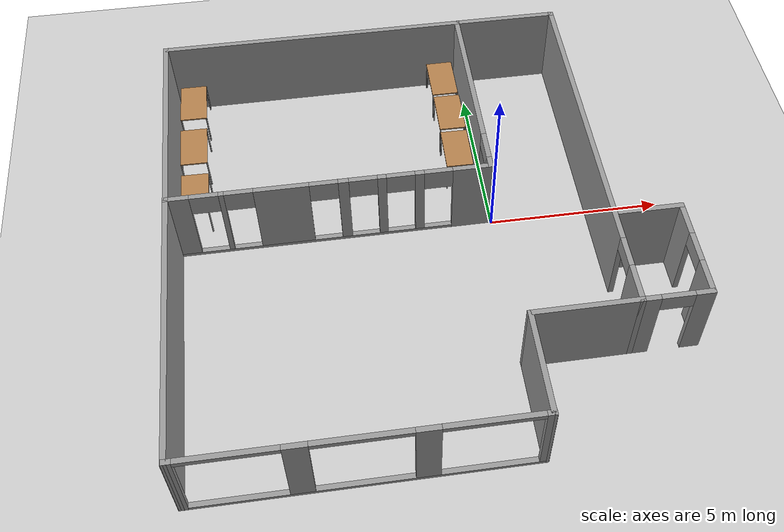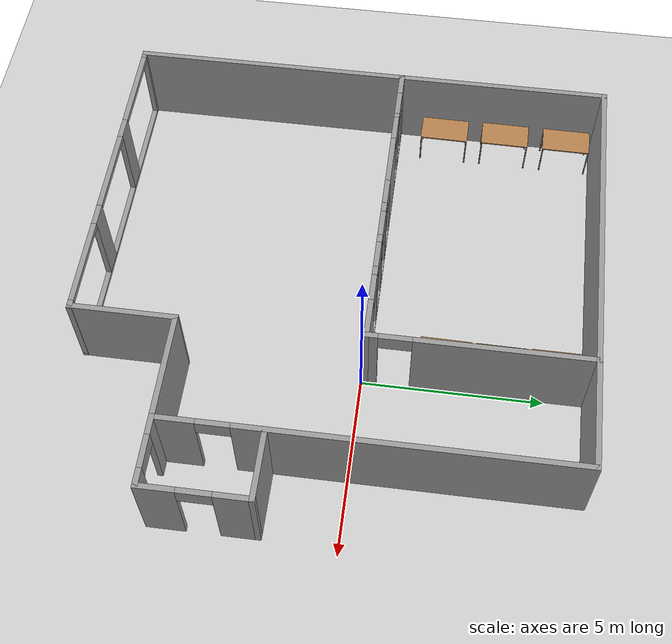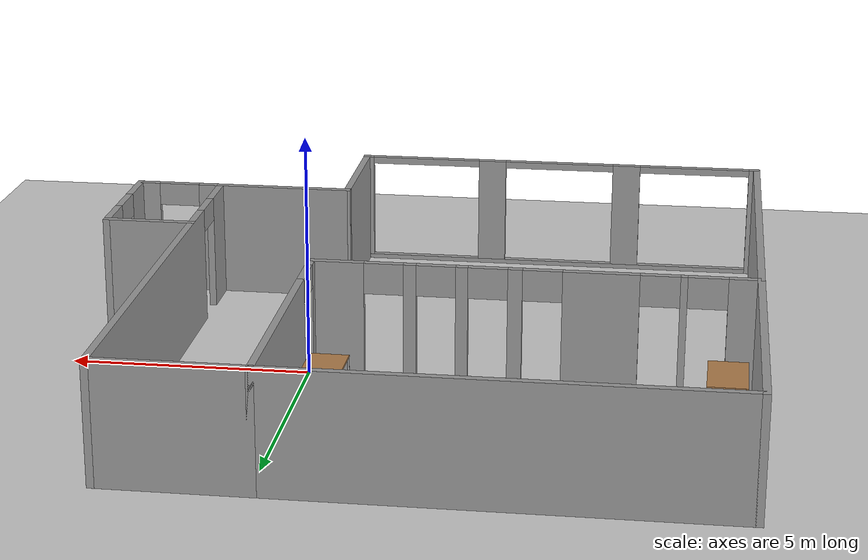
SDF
<sdf version="1.6">
 <world name="default">
  <light name="sun" type="directional">
   <pose>0 0 10 0 -0 0</pose>
   <diffuse>0.8 0.8 0.8 1</diffuse>
   <specular>0.1 0.1 0.1 1</specular>
   <attenuation>
    <range>1000</range>
    <constant>0.9</constant>
    <linear>0.01</linear>
    <quadratic>0.001</quadratic>
   </attenuation>
   <direction>-0.5 0.5 -1</direction>
  </light>
  <model name="ground_plane">
   <static>1</static>
   <link name="link">
    <collision name="collision">
     <geometry><plane><normal>0 0 1</normal><size>100 100</size></plane></geometry>
     <surface><friction><ode><mu>100</mu><mu2>50</mu2></ode></friction></surface>
    </collision>
    <visual name="visual">
     <cast_shadows>0</cast_shadows>
     <geometry><plane><normal>0 0 1</normal><size>100 100</size></plane></geometry>
     <material>
      <script><uri>file://media/materials/scripts/gazebo.material</uri><name>Gazebo/Grey</name></script>
     </material>
    </visual>
   </link>
  </model>
  <gravity>0 0 -9.8</gravity>
  <magnetic_field>6e-06 2.3e-05 -4.2e-05</magnetic_field>
  <atmosphere type="adiabatic"/>
  <physics name="default_physics" default="0" type="ode">
   <max_step_size>0.001</max_step_size>
   <real_time_factor>1</real_time_factor>
   <real_time_update_rate>1000</real_time_update_rate>
  </physics>
  <scene><ambient>0.4 0.4 0.4 1</ambient><background>0.7 0.7 0.7 1</background><shadows>1</shadows></scene>
  <spherical_coordinates>
   <surface_model>EARTH_WGS84</surface_model>
   <latitude_deg>0</latitude_deg>
   <longitude_deg>0</longitude_deg>
   <elevation>0</elevation>
   <heading_deg>0</heading_deg>
  </spherical_coordinates>
  <model name="world_model">
   <pose>-2.18469 -0.812866 0 0 -0 0</pose>
   <link name="Wall_10">
    <pose>-2.42056 0.916417 0 0 -0 3.14159</pose>
    <visual name="Wall_10_Visual_0">
     <pose>-3.99833 0 1.25 0 -0 0</pose>
     <geometry><box><size>1.15334 0.15 2.5</size></box></geometry>
     <material>
      <script><uri>file://media/materials/scripts/gazebo.material</uri><name>Gazebo/Grey</name></script>
      <ambient>1 1 1 1</ambient>
     </material>
    </visual>
    <collision name="Wall_10_Collision_0">
     <geometry><box><size>1.15334 0.15 2.5</size></box></geometry>
     <pose>-3.99833 0 1.25 0 -0 0</pose>
    </collision>
    <visual name="Wall_10_Visual_1">
     <pose>0.576669 0 0.05 0 -0 0</pose>
     <geometry><box><size>7.99666 0.15 0.1</size></box></geometry>
     <material>
      <script><uri>file://media/materials/scripts/gazebo.material</uri><name>Gazebo/Grey</name></script>
      <ambient>1 1 1 1</ambient>
     </material>
    </visual>
    <collision name="Wall_10_Collision_1">
     <geometry><box><size>7.99666 0.15 0.1</size></box></geometry>
     <pose>0.576669 0 0.05 0 -0 0</pose>
    </collision>
    <visual name="Wall_10_Visual_2">
     <pose>-2.48936 0 1.3 0 -0 0</pose>
     <geometry><box><size>0.264613 0.15 2.4</size></box></geometry>
     <material>
      <script><uri>file://media/materials/scripts/gazebo.material</uri><name>Gazebo/Grey</name></script>
      <ambient>1 1 1 1</ambient>
     </material>
    </visual>
    <collision name="Wall_10_Collision_2">
     <geometry><box><size>0.264613 0.15 2.4</size></box></geometry>
     <pose>-2.48936 0 1.3 0 -0 0</pose>
    </collision>
    <visual name="Wall_10_Visual_3">
     <pose>-1.43235 0 1.3 0 -0 0</pose>
     <geometry><box><size>0.249404 0.15 2.4</size></box></geometry>
     <material>
      <script><uri>file://media/materials/scripts/gazebo.material</uri><name>Gazebo/Grey</name></script>
      <ambient>1 1 1 1</ambient>
     </material>
    </visual>
    <collision name="Wall_10_Collision_3">
     <geometry><box><size>0.249404 0.15 2.4</size></box></geometry>
     <pose>-1.43235 0 1.3 0 -0 0</pose>
    </collision>
    <visual name="Wall_10_Visual_4">
     <pose>-0.36013 0 1.3 0 -0 0</pose>
     <geometry><box><size>0.29503 0.15 2.4</size></box></geometry>
     <material>
      <script><uri>file://media/materials/scripts/gazebo.material</uri><name>Gazebo/Grey</name></script>
      <ambient>1 1 1 1</ambient>
     </material>
    </visual>
    <collision name="Wall_10_Collision_4">
     <geometry><box><size>0.29503 0.15 2.4</size></box></geometry>
     <pose>-0.36013 0 1.3 0 -0 0</pose>
    </collision>
    <visual name="Wall_10_Visual_5">
     <pose>1.35538 0 1.3 0 -0 0</pose>
     <geometry><box><size>1.53599 0.15 2.4</size></box></geometry>
     <material>
      <script><uri>file://media/materials/scripts/gazebo.material</uri><name>Gazebo/Grey</name></script>
      <ambient>1 1 1 1</ambient>
     </material>
    </visual>
    <collision name="Wall_10_Collision_5">
     <geometry><box><size>1.53599 0.15 2.4</size></box></geometry>
     <pose>1.35538 0 1.3 0 -0 0</pose>
    </collision>
    <visual name="Wall_10_Visual_6">
     <pose>2.99453 0 1.3 0 -0 0</pose>
     <geometry><box><size>0.142316 0.15 2.4</size></box></geometry>
     <material>
      <script><uri>file://media/materials/scripts/gazebo.material</uri><name>Gazebo/Grey</name></script>
      <ambient>1 1 1 1</ambient>
     </material>
    </visual>
    <collision name="Wall_10_Collision_6">
     <geometry><box><size>0.142316 0.15 2.4</size></box></geometry>
     <pose>2.99453 0 1.3 0 -0 0</pose>
    </collision>
    <visual name="Wall_10_Visual_7">
     <pose>4.22035 0 1.3 0 -0 0</pose>
     <geometry><box><size>0.709308 0.15 2.4</size></box></geometry>
     <material>
      <script><uri>file://media/materials/scripts/gazebo.material</uri><name>Gazebo/Grey</name></script>
      <ambient>1 1 1 1</ambient>
     </material>
    </visual>
    <collision name="Wall_10_Collision_7">
     <geometry><box><size>0.709308 0.15 2.4</size></box></geometry>
     <pose>4.22035 0 1.3 0 -0 0</pose>
    </collision>
    <visual name="Wall_10_Visual_8">
     <pose>-3.02166 0 2.175 0 -0 0</pose>
     <geometry><box><size>0.8 0.15 0.65</size></box></geometry>
     <material>
      <script><uri>file://media/materials/scripts/gazebo.material</uri><name>Gazebo/Grey</name></script>
      <ambient>1 1 1 1</ambient>
     </material>
    </visual>
    <collision name="Wall_10_Collision_8">
     <geometry><box><size>0.8 0.15 0.65</size></box></geometry>
     <pose>-3.02166 0 2.175 0 -0 0</pose>
    </collision>
    <visual name="Wall_10_Visual_9">
     <pose>-1.95705 0 2.175 0 -0 0</pose>
     <geometry><box><size>0.8 0.15 0.65</size></box></geometry>
     <material>
      <script><uri>file://media/materials/scripts/gazebo.material</uri><name>Gazebo/Grey</name></script>
      <ambient>1 1 1 1</ambient>
     </material>
    </visual>
    <collision name="Wall_10_Collision_9">
     <geometry><box><size>0.8 0.15 0.65</size></box></geometry>
     <pose>-1.95705 0 2.175 0 -0 0</pose>
    </collision>
    <visual name="Wall_10_Visual_10">
     <pose>-0.907645 0 2.175 0 -0 0</pose>
     <geometry><box><size>0.8 0.15 0.65</size></box></geometry>
     <material>
      <script><uri>file://media/materials/scripts/gazebo.material</uri><name>Gazebo/Grey</name></script>
      <ambient>1 1 1 1</ambient>
     </material>
    </visual>
    <collision name="Wall_10_Collision_10">
     <geometry><box><size>0.8 0.15 0.65</size></box></geometry>
     <pose>-0.907645 0 2.175 0 -0 0</pose>
    </collision>
    <visual name="Wall_10_Visual_11">
     <pose>0.187385 0 2.175 0 -0 0</pose>
     <geometry><box><size>0.8 0.15 0.65</size></box></geometry>
     <material>
      <script><uri>file://media/materials/scripts/gazebo.material</uri><name>Gazebo/Grey</name></script>
      <ambient>1 1 1 1</ambient>
     </material>
    </visual>
    <collision name="Wall_10_Collision_11">
     <geometry><box><size>0.8 0.15 0.65</size></box></geometry>
     <pose>0.187385 0 2.175 0 -0 0</pose>
    </collision>
    <visual name="Wall_10_Visual_12">
     <pose>2.52338 0 2.175 0 -0 0</pose>
     <geometry><box><size>0.8 0.15 0.65</size></box></geometry>
     <material>
      <script><uri>file://media/materials/scripts/gazebo.material</uri><name>Gazebo/Grey</name></script>
      <ambient>1 1 1 1</ambient>
     </material>
    </visual>
    <collision name="Wall_10_Collision_12">
     <geometry><box><size>0.8 0.15 0.65</size></box></geometry>
     <pose>2.52338 0 2.175 0 -0 0</pose>
    </collision>
    <visual name="Wall_10_Visual_13">
     <pose>3.46569 0 2.175 0 -0 0</pose>
     <geometry><box><size>0.8 0.15 0.65</size></box></geometry>
     <material>
      <script><uri>file://media/materials/scripts/gazebo.material</uri><name>Gazebo/Grey</name></script>
      <ambient>1 1 1 1</ambient>
     </material>
    </visual>
    <collision name="Wall_10_Collision_13">
     <geometry><box><size>0.8 0.15 0.65</size></box></geometry>
     <pose>3.46569 0 2.175 0 -0 0</pose>
    </collision>
   </link>
   <link name="Wall_12">
    <collision name="Wall_12_Collision">
     <geometry><box><size>6.15 0.15 2.5</size></box></geometry>
     <pose>0 0 1.25 0 -0 0</pose>
    </collision>
    <visual name="Wall_12_Visual">
     <pose>0 0 1.25 0 -0 0</pose>
     <geometry><box><size>6.15 0.15 2.5</size></box></geometry>
     <material>
      <script><uri>file://media/materials/scripts/gazebo.material</uri><name>Gazebo/Grey</name></script>
      <ambient>1 1 1 1</ambient>
     </material>
    </visual>
    <pose>-6.92056 3.91642 0 0 -0 1.5708</pose>
   </link>
   <link name="Wall_14">
    <collision name="Wall_14_Collision">
     <geometry><box><size>9.15 0.15 2.5</size></box></geometry>
     <pose>0 0 1.25 0 -0 0</pose>
    </collision>
    <visual name="Wall_14_Visual">
     <pose>0 0 1.25 0 -0 0</pose>
     <geometry><box><size>9.15 0.15 2.5</size></box></geometry>
     <material>
      <script><uri>file://media/materials/scripts/gazebo.material</uri><name>Gazebo/Grey</name></script>
      <ambient>1 1 1 1</ambient>
     </material>
    </visual>
    <pose>-2.42056 6.91642 0 0 -0 0</pose>
   </link>
   <link name="Wall_16">
    <pose>2.07944 3.91642 0 0 0 -1.5708</pose>
    <visual name="Wall_16_Visual_0">
     <pose>-0.640307 0 1.25 0 -0 0</pose>
     <geometry><box><size>4.86939 0.15 2.5</size></box></geometry>
     <material>
      <script><uri>file://media/materials/scripts/gazebo.material</uri><name>Gazebo/Grey</name></script>
      <ambient>1 1 1 1</ambient>
     </material>
    </visual>
    <collision name="Wall_16_Collision_0">
     <geometry><box><size>4.86939 0.15 2.5</size></box></geometry>
     <pose>-0.640307 0 1.25 0 -0 0</pose>
    </collision>
    <visual name="Wall_16_Visual_1">
     <pose>2.88469 0 1.25 0 -0 0</pose>
     <geometry><box><size>0.380615 0.15 2.5</size></box></geometry>
     <material>
      <script><uri>file://media/materials/scripts/gazebo.material</uri><name>Gazebo/Grey</name></script>
      <ambient>1 1 1 1</ambient>
     </material>
    </visual>
    <collision name="Wall_16_Collision_1">
     <geometry><box><size>0.380615 0.15 2.5</size></box></geometry>
     <pose>2.88469 0 1.25 0 -0 0</pose>
    </collision>
    <visual name="Wall_16_Visual_2">
     <pose>2.24438 0 2.25 0 -0 0</pose>
     <geometry><box><size>0.9 0.15 0.5</size></box></geometry>
     <material>
      <script><uri>file://media/materials/scripts/gazebo.material</uri><name>Gazebo/Grey</name></script>
      <ambient>1 1 1 1</ambient>
     </material>
    </visual>
    <collision name="Wall_16_Collision_2">
     <geometry><box><size>0.9 0.15 0.5</size></box></geometry>
     <pose>2.24438 0 2.25 0 -0 0</pose>
    </collision>
   </link>
   <link name="Wall_23">
    <collision name="Wall_23_Collision">
     <geometry><box><size>3.15 0.15 2.5</size></box></geometry>
     <pose>0 0 1.25 0 -0 0</pose>
    </collision>
    <visual name="Wall_23_Visual">
     <pose>0 0 1.25 0 -0 0</pose>
     <geometry><box><size>3.15 0.15 2.5</size></box></geometry>
     <material>
      <script><uri>file://media/materials/scripts/gazebo.material</uri><name>Gazebo/Grey</name></script>
      <ambient>1 1 1 1</ambient>
     </material>
    </visual>
    <pose>3.57944 6.91642 0 0 -0 3.14159</pose>
   </link>
   <link name="Wall_25">
    <collision name="Wall_25_Collision">
     <geometry><box><size>7.98261 0.15 2.5</size></box></geometry>
     <pose>0 0 1.25 0 -0 0</pose>
    </collision>
    <visual name="Wall_25_Visual">
     <pose>0 0 1.25 0 -0 0</pose>
     <geometry><box><size>7.98261 0.15 2.5</size></box></geometry>
     <material>
      <script><uri>file://media/materials/scripts/gazebo.material</uri><name>Gazebo/Grey</name></script>
      <ambient>1 1 1 1</ambient>
     </material>
    </visual>
    <pose>-6.92496 -2.99989 0 0 0 -1.57192</pose>
   </link>
   <link name="Wall_28">
    <pose>5.07944 1.41642 0 0 0 -1.5708</pose>
    <visual name="Wall_28_Visual_0">
     <pose>-1.02771 0 1.25 0 -0 0</pose>
     <geometry><box><size>9.09458 0.15 2.5</size></box></geometry>
     <material>
      <script><uri>file://media/materials/scripts/gazebo.material</uri><name>Gazebo/Grey</name></script>
      <ambient>1 1 1 1</ambient>
     </material>
    </visual>
    <collision name="Wall_28_Collision_0">
     <geometry><box><size>9.09458 0.15 2.5</size></box></geometry>
     <pose>-1.02771 0 1.25 0 -0 0</pose>
    </collision>
    <visual name="Wall_28_Visual_1">
     <pose>4.99729 0 1.25 0 -0 0</pose>
     <geometry><box><size>1.15542 0.15 2.5</size></box></geometry>
     <material>
      <script><uri>file://media/materials/scripts/gazebo.material</uri><name>Gazebo/Grey</name></script>
      <ambient>1 1 1 1</ambient>
     </material>
    </visual>
    <collision name="Wall_28_Collision_1">
     <geometry><box><size>1.15542 0.15 2.5</size></box></geometry>
     <pose>4.99729 0 1.25 0 -0 0</pose>
    </collision>
    <visual name="Wall_28_Visual_2">
     <pose>3.96958 0 2.25 0 -0 0</pose>
     <geometry><box><size>0.9 0.15 0.5</size></box></geometry>
     <material>
      <script><uri>file://media/materials/scripts/gazebo.material</uri><name>Gazebo/Grey</name></script>
      <ambient>1 1 1 1</ambient>
     </material>
    </visual>
    <collision name="Wall_28_Collision_2">
     <geometry><box><size>0.9 0.15 0.5</size></box></geometry>
     <pose>3.96958 0 2.25 0 -0 0</pose>
    </collision>
   </link>
   <link name="Wall_31">
    <pose>-2.37066 -6.91619 0 0 -0 0</pose>
    <visual name="Wall_31_Visual_0">
     <pose>-4.50388 0 1.25 0 -0 0</pose>
     <geometry><box><size>0.242237 0.15 2.5</size></box></geometry>
     <material>
      <script><uri>file://media/materials/scripts/gazebo.material</uri><name>Gazebo/Grey</name></script>
      <ambient>1 1 1 1</ambient>
     </material>
    </visual>
    <collision name="Wall_31_Collision_0">
     <geometry><box><size>0.242237 0.15 2.5</size></box></geometry>
     <pose>-4.50388 0 1.25 0 -0 0</pose>
    </collision>
    <visual name="Wall_31_Visual_1">
     <pose>0.121119 0 0.05 0 -0 0</pose>
     <geometry><box><size>9.00776 0.15 0.1</size></box></geometry>
     <material>
      <script><uri>file://media/materials/scripts/gazebo.material</uri><name>Gazebo/Grey</name></script>
      <ambient>1 1 1 1</ambient>
     </material>
    </visual>
    <collision name="Wall_31_Collision_1">
     <geometry><box><size>9.00776 0.15 0.1</size></box></geometry>
     <pose>0.121119 0 0.05 0 -0 0</pose>
    </collision>
    <visual name="Wall_31_Visual_2">
     <pose>-1.56754 0 1.3 0 -0 0</pose>
     <geometry><box><size>0.630435 0.15 2.4</size></box></geometry>
     <material>
      <script><uri>file://media/materials/scripts/gazebo.material</uri><name>Gazebo/Grey</name></script>
      <ambient>1 1 1 1</ambient>
     </material>
    </visual>
    <collision name="Wall_31_Collision_2">
     <geometry><box><size>0.630435 0.15 2.4</size></box></geometry>
     <pose>-1.56754 0 1.3 0 -0 0</pose>
    </collision>
    <visual name="Wall_31_Visual_3">
     <pose>1.56289 0 1.3 0 -0 0</pose>
     <geometry><box><size>0.630427 0.15 2.4</size></box></geometry>
     <material>
      <script><uri>file://media/materials/scripts/gazebo.material</uri><name>Gazebo/Grey</name></script>
      <ambient>1 1 1 1</ambient>
     </material>
    </visual>
    <collision name="Wall_31_Collision_3">
     <geometry><box><size>0.630427 0.15 2.4</size></box></geometry>
     <pose>1.56289 0 1.3 0 -0 0</pose>
    </collision>
    <visual name="Wall_31_Visual_4">
     <pose>4.50155 0 1.3 0 -0 0</pose>
     <geometry><box><size>0.246901 0.15 2.4</size></box></geometry>
     <material>
      <script><uri>file://media/materials/scripts/gazebo.material</uri><name>Gazebo/Grey</name></script>
      <ambient>1 1 1 1</ambient>
     </material>
    </visual>
    <collision name="Wall_31_Collision_4">
     <geometry><box><size>0.246901 0.15 2.4</size></box></geometry>
     <pose>4.50155 0 1.3 0 -0 0</pose>
    </collision>
    <visual name="Wall_31_Visual_5">
     <pose>-3.13276 0 2.425 0 -0 0</pose>
     <geometry><box><size>2.5 0.15 0.15</size></box></geometry>
     <material>
      <script><uri>file://media/materials/scripts/gazebo.material</uri><name>Gazebo/Grey</name></script>
      <ambient>1 1 1 1</ambient>
     </material>
    </visual>
    <collision name="Wall_31_Collision_5">
     <geometry><box><size>2.5 0.15 0.15</size></box></geometry>
     <pose>-3.13276 0 2.425 0 -0 0</pose>
    </collision>
    <visual name="Wall_31_Visual_6">
     <pose>-0.002328 0 2.425 0 -0 0</pose>
     <geometry><box><size>2.5 0.15 0.15</size></box></geometry>
     <material>
      <script><uri>file://media/materials/scripts/gazebo.material</uri><name>Gazebo/Grey</name></script>
      <ambient>1 1 1 1</ambient>
     </material>
    </visual>
    <collision name="Wall_31_Collision_6">
     <geometry><box><size>2.5 0.15 0.15</size></box></geometry>
     <pose>-0.002328 0 2.425 0 -0 0</pose>
    </collision>
    <visual name="Wall_31_Visual_7">
     <pose>3.1281 0 2.425 0 -0 0</pose>
     <geometry><box><size>2.5 0.15 0.15</size></box></geometry>
     <material>
      <script><uri>file://media/materials/scripts/gazebo.material</uri><name>Gazebo/Grey</name></script>
      <ambient>1 1 1 1</ambient>
     </material>
    </visual>
    <collision name="Wall_31_Collision_7">
     <geometry><box><size>2.5 0.15 0.15</size></box></geometry>
     <pose>3.1281 0 2.425 0 -0 0</pose>
    </collision>
   </link>
   <link name="Wall_36">
    <collision name="Wall_36_Collision">
     <geometry><box><size>2.98261 0.15 2.5</size></box></geometry>
     <pose>0 0 1.25 0 -0 0</pose>
    </collision>
    <visual name="Wall_36_Visual">
     <pose>0 0 1.25 0 -0 0</pose>
     <geometry><box><size>2.98261 0.15 2.5</size></box></geometry>
     <material>
      <script><uri>file://media/materials/scripts/gazebo.material</uri><name>Gazebo/Grey</name></script>
      <ambient>1 1 1 1</ambient>
     </material>
    </visual>
    <pose>2.17504 -5.49989 0 0 -0 1.56769</pose>
   </link>
   <link name="Wall_37">
    <collision name="Wall_37_Collision">
     <geometry><box><size>3.05043 0.15 2.5</size></box></geometry>
     <pose>0 0 1.25 0 -0 0</pose>
    </collision>
    <visual name="Wall_37_Visual">
     <pose>0 0 1.25 0 -0 0</pose>
     <geometry><box><size>3.05043 0.15 2.5</size></box></geometry>
     <material>
      <script><uri>file://media/materials/scripts/gazebo.material</uri><name>Gazebo/Grey</name></script>
      <ambient>1 1 1 1</ambient>
     </material>
    </visual>
    <pose>3.62944 -4.08358 0 0 -0 0</pose>
   </link>
   <link name="Wall_39">
    <pose>6.00444 -4.08358 0 0 -0 0</pose>
    <visual name="Wall_39_Visual_0">
     <pose>-0.717161 0 1.25 0 -0 0</pose>
     <geometry><box><size>0.565678 0.15 2.5</size></box></geometry>
     <material>
      <script><uri>file://media/materials/scripts/gazebo.material</uri><name>Gazebo/Grey</name></script>
      <ambient>1 1 1 1</ambient>
     </material>
    </visual>
    <collision name="Wall_39_Collision_0">
     <geometry><box><size>0.565678 0.15 2.5</size></box></geometry>
     <pose>-0.717161 0 1.25 0 -0 0</pose>
    </collision>
    <visual name="Wall_39_Visual_1">
     <pose>0.732839 0 1.25 0 -0 0</pose>
     <geometry><box><size>0.534322 0.15 2.5</size></box></geometry>
     <material>
      <script><uri>file://media/materials/scripts/gazebo.material</uri><name>Gazebo/Grey</name></script>
      <ambient>1 1 1 1</ambient>
     </material>
    </visual>
    <collision name="Wall_39_Collision_1">
     <geometry><box><size>0.534322 0.15 2.5</size></box></geometry>
     <pose>0.732839 0 1.25 0 -0 0</pose>
    </collision>
    <visual name="Wall_39_Visual_2">
     <pose>0.015678 0 2.25 0 -0 0</pose>
     <geometry><box><size>0.9 0.15 0.5</size></box></geometry>
     <material>
      <script><uri>file://media/materials/scripts/gazebo.material</uri><name>Gazebo/Grey</name></script>
      <ambient>1 1 1 1</ambient>
     </material>
    </visual>
    <collision name="Wall_39_Collision_2">
     <geometry><box><size>0.9 0.15 0.5</size></box></geometry>
     <pose>0.015678 0 2.25 0 -0 0</pose>
    </collision>
   </link>
   <link name="Wall_40">
    <pose>6.92944 -2.65858 0 0 -0 1.5708</pose>
    <visual name="Wall_40_Visual_0">
     <pose>-0.972888 0 1.25 0 -0 0</pose>
     <geometry><box><size>1.05422 0.15 2.5</size></box></geometry>
     <material>
      <script><uri>file://media/materials/scripts/gazebo.material</uri><name>Gazebo/Grey</name></script>
      <ambient>1 1 1 1</ambient>
     </material>
    </visual>
    <collision name="Wall_40_Collision_0">
     <geometry><box><size>1.05422 0.15 2.5</size></box></geometry>
     <pose>-0.972888 0 1.25 0 -0 0</pose>
    </collision>
    <visual name="Wall_40_Visual_1">
     <pose>0.977112 0 1.25 0 -0 0</pose>
     <geometry><box><size>1.04578 0.15 2.5</size></box></geometry>
     <material>
      <script><uri>file://media/materials/scripts/gazebo.material</uri><name>Gazebo/Grey</name></script>
      <ambient>1 1 1 1</ambient>
     </material>
    </visual>
    <collision name="Wall_40_Collision_1">
     <geometry><box><size>1.04578 0.15 2.5</size></box></geometry>
     <pose>0.977112 0 1.25 0 -0 0</pose>
    </collision>
    <visual name="Wall_40_Visual_2">
     <pose>0.004224 0 2.25 0 -0 0</pose>
     <geometry><box><size>0.9 0.15 0.5</size></box></geometry>
     <material>
      <script><uri>file://media/materials/scripts/gazebo.material</uri><name>Gazebo/Grey</name></script>
      <ambient>1 1 1 1</ambient>
     </material>
    </visual>
    <collision name="Wall_40_Collision_2">
     <geometry><box><size>0.9 0.15 0.5</size></box></geometry>
     <pose>0.004224 0 2.25 0 -0 0</pose>
    </collision>
   </link>
   <link name="Wall_41">
    <collision name="Wall_41_Collision">
     <geometry><box><size>2 0.15 2.5</size></box></geometry>
     <pose>0 0 1.25 0 -0 0</pose>
    </collision>
    <visual name="Wall_41_Visual">
     <pose>0 0 1.25 0 -0 0</pose>
     <geometry><box><size>2 0.15 2.5</size></box></geometry>
     <material>
      <script><uri>file://media/materials/scripts/gazebo.material</uri><name>Gazebo/Grey</name></script>
      <ambient>1 1 1 1</ambient>
     </material>
    </visual>
    <pose>6.00444 -1.23358 0 0 -0 3.14159</pose>
   </link>
   <static>1</static>
  </model>
  <model name="table">
   <static>0</static>
   <link name="link">
    <collision name="surface">
     <pose>0 0 1 0 -0 0</pose>
     <geometry><box><size>1.5 0.8 0.03</size></box></geometry>
     <surface><friction><ode><mu>0.6</mu><mu2>0.6</mu2></ode></friction></surface>
    </collision>
    <visual name="visual1">
     <pose>0 0 1 0 -0 0</pose>
     <geometry><box><size>1.4 0.8 0.04</size></box></geometry>
     <material>
      <script><uri>file://media/materials/scripts/gazebo.material</uri><name>Gazebo/Wood</name></script>
     </material>
    </visual>
    <collision name="front_left_leg">
     <pose>0.68 0.38 0.5 0 -0 0</pose>
     <geometry><cylinder><radius>0.02</radius><length>1</length></cylinder></geometry>
    </collision>
    <visual name="front_left_leg">
     <pose>0.68 0.38 0.5 0 -0 0</pose>
     <geometry><cylinder><radius>0.02</radius><length>1</length></cylinder></geometry>
     <material>
      <script><uri>file://media/materials/scripts/gazebo.material</uri><name>Gazebo/Grey</name></script>
     </material>
    </visual>
    <collision name="front_right_leg">
     <pose>0.68 -0.38 0.5 0 -0 0</pose>
     <geometry><cylinder><radius>0.02</radius><length>1</length></cylinder></geometry>
    </collision>
    <visual name="front_right_leg">
     <pose>0.68 -0.38 0.5 0 -0 0</pose>
     <geometry><cylinder><radius>0.02</radius><length>1</length></cylinder></geometry>
     <material>
      <script><uri>file://media/materials/scripts/gazebo.material</uri><name>Gazebo/Grey</name></script>
     </material>
    </visual>
    <collision name="back_right_leg">
     <pose>-0.68 -0.38 0.5 0 -0 0</pose>
     <geometry><cylinder><radius>0.02</radius><length>1</length></cylinder></geometry>
    </collision>
    <visual name="back_right_leg">
     <pose>-0.68 -0.38 0.5 0 -0 0</pose>
     <geometry><cylinder><radius>0.02</radius><length>1</length></cylinder></geometry>
     <material>
      <script><uri>file://media/materials/scripts/gazebo.material</uri><name>Gazebo/Grey</name></script>
     </material>
    </visual>
    <collision name="back_left_leg">
     <pose>-0.68 0.38 0.5 0 -0 0</pose>
     <geometry><cylinder><radius>0.02</radius><length>1</length></cylinder></geometry>
    </collision>
    <visual name="back_left_leg">
     <pose>-0.68 0.38 0.5 0 -0 0</pose>
     <geometry><cylinder><radius>0.02</radius><length>1</length></cylinder></geometry>
     <material>
      <script><uri>file://media/materials/scripts/gazebo.material</uri><name>Gazebo/Grey</name></script>
     </material>
    </visual>
    <inertial>
     <inertia><ixx>1</ixx><ixy>0</ixy><ixz>0</ixz><iyy>1</iyy><iyz>0</iyz><izz>1</izz></inertia>
     <mass>1</mass>
    </inertial>
   </link>
   <pose>-0.684776 5.22483 -9e-06 0 -1e-06 -1.57125</pose>
  </model>
  <model name="table_0">
   <static>0</static>
   <link name="link">
    <collision name="surface">
     <pose>0 0 1 0 -0 0</pose>
     <geometry><box><size>1.5 0.8 0.03</size></box></geometry>
     <surface><friction><ode><mu>0.6</mu><mu2>0.6</mu2></ode></friction></surface>
    </collision>
    <visual name="visual1">
     <pose>0 0 1 0 -0 0</pose>
     <geometry><box><size>1.4 0.8 0.04</size></box></geometry>
     <material>
      <script><uri>file://media/materials/scripts/gazebo.material</uri><name>Gazebo/Wood</name></script>
     </material>
    </visual>
    <collision name="front_left_leg">
     <pose>0.68 0.38 0.5 0 -0 0</pose>
     <geometry><cylinder><radius>0.02</radius><length>1</length></cylinder></geometry>
    </collision>
    <visual name="front_left_leg">
     <pose>0.68 0.38 0.5 0 -0 0</pose>
     <geometry><cylinder><radius>0.02</radius><length>1</length></cylinder></geometry>
     <material>
      <script><uri>file://media/materials/scripts/gazebo.material</uri><name>Gazebo/Grey</name></script>
     </material>
    </visual>
    <collision name="front_right_leg">
     <pose>0.68 -0.38 0.5 0 -0 0</pose>
     <geometry><cylinder><radius>0.02</radius><length>1</length></cylinder></geometry>
    </collision>
    <visual name="front_right_leg">
     <pose>0.68 -0.38 0.5 0 -0 0</pose>
     <geometry><cylinder><radius>0.02</radius><length>1</length></cylinder></geometry>
     <material>
      <script><uri>file://media/materials/scripts/gazebo.material</uri><name>Gazebo/Grey</name></script>
     </material>
    </visual>
    <collision name="back_right_leg">
     <pose>-0.68 -0.38 0.5 0 -0 0</pose>
     <geometry><cylinder><radius>0.02</radius><length>1</length></cylinder></geometry>
    </collision>
    <visual name="back_right_leg">
     <pose>-0.68 -0.38 0.5 0 -0 0</pose>
     <geometry><cylinder><radius>0.02</radius><length>1</length></cylinder></geometry>
     <material>
      <script><uri>file://media/materials/scripts/gazebo.material</uri><name>Gazebo/Grey</name></script>
     </material>
    </visual>
    <collision name="back_left_leg">
     <pose>-0.68 0.38 0.5 0 -0 0</pose>
     <geometry><cylinder><radius>0.02</radius><length>1</length></cylinder></geometry>
    </collision>
    <visual name="back_left_leg">
     <pose>-0.68 0.38 0.5 0 -0 0</pose>
     <geometry><cylinder><radius>0.02</radius><length>1</length></cylinder></geometry>
     <material>
      <script><uri>file://media/materials/scripts/gazebo.material</uri><name>Gazebo/Grey</name></script>
     </material>
    </visual>
    <inertial>
     <inertia><ixx>1</ixx><ixy>0</ixy><ixz>0</ixz><iyy>1</iyy><iyz>0</iyz><izz>1</izz></inertia>
     <mass>1</mass>
    </inertial>
   </link>
   <pose>-0.674124 3.72156 -8e-06 0 0 -1.57861</pose>
  </model>
  <model name="table_1">
   <static>0</static>
   <link name="link">
    <collision name="surface">
     <pose>0 0 1 0 -0 0</pose>
     <geometry><box><size>1.5 0.8 0.03</size></box></geometry>
     <surface><friction><ode><mu>0.6</mu><mu2>0.6</mu2></ode></friction></surface>
    </collision>
    <visual name="visual1">
     <pose>0 0 1 0 -0 0</pose>
     <geometry><box><size>1.4 0.8 0.04</size></box></geometry>
     <material>
      <script><uri>file://media/materials/scripts/gazebo.material</uri><name>Gazebo/Wood</name></script>
     </material>
    </visual>
    <collision name="front_left_leg">
     <pose>0.68 0.38 0.5 0 -0 0</pose>
     <geometry><cylinder><radius>0.02</radius><length>1</length></cylinder></geometry>
    </collision>
    <visual name="front_left_leg">
     <pose>0.68 0.38 0.5 0 -0 0</pose>
     <geometry><cylinder><radius>0.02</radius><length>1</length></cylinder></geometry>
     <material>
      <script><uri>file://media/materials/scripts/gazebo.material</uri><name>Gazebo/Grey</name></script>
     </material>
    </visual>
    <collision name="front_right_leg">
     <pose>0.68 -0.38 0.5 0 -0 0</pose>
     <geometry><cylinder><radius>0.02</radius><length>1</length></cylinder></geometry>
    </collision>
    <visual name="front_right_leg">
     <pose>0.68 -0.38 0.5 0 -0 0</pose>
     <geometry><cylinder><radius>0.02</radius><length>1</length></cylinder></geometry>
     <material>
      <script><uri>file://media/materials/scripts/gazebo.material</uri><name>Gazebo/Grey</name></script>
     </material>
    </visual>
    <collision name="back_right_leg">
     <pose>-0.68 -0.38 0.5 0 -0 0</pose>
     <geometry><cylinder><radius>0.02</radius><length>1</length></cylinder></geometry>
    </collision>
    <visual name="back_right_leg">
     <pose>-0.68 -0.38 0.5 0 -0 0</pose>
     <geometry><cylinder><radius>0.02</radius><length>1</length></cylinder></geometry>
     <material>
      <script><uri>file://media/materials/scripts/gazebo.material</uri><name>Gazebo/Grey</name></script>
     </material>
    </visual>
    <collision name="back_left_leg">
     <pose>-0.68 0.38 0.5 0 -0 0</pose>
     <geometry><cylinder><radius>0.02</radius><length>1</length></cylinder></geometry>
    </collision>
    <visual name="back_left_leg">
     <pose>-0.68 0.38 0.5 0 -0 0</pose>
     <geometry><cylinder><radius>0.02</radius><length>1</length></cylinder></geometry>
     <material>
      <script><uri>file://media/materials/scripts/gazebo.material</uri><name>Gazebo/Grey</name></script>
     </material>
    </visual>
    <inertial>
     <inertia><ixx>1</ixx><ixy>0</ixy><ixz>0</ixz><iyy>1</iyy><iyz>0</iyz><izz>1</izz></inertia>
     <mass>1</mass>
    </inertial>
   </link>
   <pose>-0.691949 2.19529 -2e-06 -0 1e-06 -1.58371</pose>
  </model>
  <model name="table_2">
   <static>0</static>
   <link name="link">
    <collision name="surface">
     <pose>0 0 1 0 -0 0</pose>
     <geometry><box><size>1.5 0.8 0.03</size></box></geometry>
     <surface><friction><ode><mu>0.6</mu><mu2>0.6</mu2></ode></friction></surface>
    </collision>
    <visual name="visual1">
     <pose>0 0 1 0 -0 0</pose>
     <geometry><box><size>1.4 0.8 0.04</size></box></geometry>
     <material>
      <script><uri>file://media/materials/scripts/gazebo.material</uri><name>Gazebo/Wood</name></script>
     </material>
    </visual>
    <collision name="front_left_leg">
     <pose>0.68 0.38 0.5 0 -0 0</pose>
     <geometry><cylinder><radius>0.02</radius><length>1</length></cylinder></geometry>
    </collision>
    <visual name="front_left_leg">
     <pose>0.68 0.38 0.5 0 -0 0</pose>
     <geometry><cylinder><radius>0.02</radius><length>1</length></cylinder></geometry>
     <material>
      <script><uri>file://media/materials/scripts/gazebo.material</uri><name>Gazebo/Grey</name></script>
     </material>
    </visual>
    <collision name="front_right_leg">
     <pose>0.68 -0.38 0.5 0 -0 0</pose>
     <geometry><cylinder><radius>0.02</radius><length>1</length></cylinder></geometry>
    </collision>
    <visual name="front_right_leg">
     <pose>0.68 -0.38 0.5 0 -0 0</pose>
     <geometry><cylinder><radius>0.02</radius><length>1</length></cylinder></geometry>
     <material>
      <script><uri>file://media/materials/scripts/gazebo.material</uri><name>Gazebo/Grey</name></script>
     </material>
    </visual>
    <collision name="back_right_leg">
     <pose>-0.68 -0.38 0.5 0 -0 0</pose>
     <geometry><cylinder><radius>0.02</radius><length>1</length></cylinder></geometry>
    </collision>
    <visual name="back_right_leg">
     <pose>-0.68 -0.38 0.5 0 -0 0</pose>
     <geometry><cylinder><radius>0.02</radius><length>1</length></cylinder></geometry>
     <material>
      <script><uri>file://media/materials/scripts/gazebo.material</uri><name>Gazebo/Grey</name></script>
     </material>
    </visual>
    <collision name="back_left_leg">
     <pose>-0.68 0.38 0.5 0 -0 0</pose>
     <geometry><cylinder><radius>0.02</radius><length>1</length></cylinder></geometry>
    </collision>
    <visual name="back_left_leg">
     <pose>-0.68 0.38 0.5 0 -0 0</pose>
     <geometry><cylinder><radius>0.02</radius><length>1</length></cylinder></geometry>
     <material>
      <script><uri>file://media/materials/scripts/gazebo.material</uri><name>Gazebo/Grey</name></script>
     </material>
    </visual>
    <inertial>
     <inertia><ixx>1</ixx><ixy>0</ixy><ixz>0</ixz><iyy>1</iyy><iyz>0</iyz><izz>1</izz></inertia>
     <mass>1</mass>
    </inertial>
   </link>
   <pose>-8.516 5.22126 -2e-06 -2e-06 -2e-06 1.56166</pose>
  </model>
  <model name="table_3">
   <static>0</static>
   <link name="link">
    <collision name="surface">
     <pose>0 0 1 0 -0 0</pose>
     <geometry><box><size>1.5 0.8 0.03</size></box></geometry>
     <surface><friction><ode><mu>0.6</mu><mu2>0.6</mu2></ode></friction></surface>
    </collision>
    <visual name="visual1">
     <pose>0 0 1 0 -0 0</pose>
     <geometry><box><size>1.4 0.8 0.04</size></box></geometry>
     <material>
      <script><uri>file://media/materials/scripts/gazebo.material</uri><name>Gazebo/Wood</name></script>
     </material>
    </visual>
    <collision name="front_left_leg">
     <pose>0.68 0.38 0.5 0 -0 0</pose>
     <geometry><cylinder><radius>0.02</radius><length>1</length></cylinder></geometry>
    </collision>
    <visual name="front_left_leg">
     <pose>0.68 0.38 0.5 0 -0 0</pose>
     <geometry><cylinder><radius>0.02</radius><length>1</length></cylinder></geometry>
     <material>
      <script><uri>file://media/materials/scripts/gazebo.material</uri><name>Gazebo/Grey</name></script>
     </material>
    </visual>
    <collision name="front_right_leg">
     <pose>0.68 -0.38 0.5 0 -0 0</pose>
     <geometry><cylinder><radius>0.02</radius><length>1</length></cylinder></geometry>
    </collision>
    <visual name="front_right_leg">
     <pose>0.68 -0.38 0.5 0 -0 0</pose>
     <geometry><cylinder><radius>0.02</radius><length>1</length></cylinder></geometry>
     <material>
      <script><uri>file://media/materials/scripts/gazebo.material</uri><name>Gazebo/Grey</name></script>
     </material>
    </visual>
    <collision name="back_right_leg">
     <pose>-0.68 -0.38 0.5 0 -0 0</pose>
     <geometry><cylinder><radius>0.02</radius><length>1</length></cylinder></geometry>
    </collision>
    <visual name="back_right_leg">
     <pose>-0.68 -0.38 0.5 0 -0 0</pose>
     <geometry><cylinder><radius>0.02</radius><length>1</length></cylinder></geometry>
     <material>
      <script><uri>file://media/materials/scripts/gazebo.material</uri><name>Gazebo/Grey</name></script>
     </material>
    </visual>
    <collision name="back_left_leg">
     <pose>-0.68 0.38 0.5 0 -0 0</pose>
     <geometry><cylinder><radius>0.02</radius><length>1</length></cylinder></geometry>
    </collision>
    <visual name="back_left_leg">
     <pose>-0.68 0.38 0.5 0 -0 0</pose>
     <geometry><cylinder><radius>0.02</radius><length>1</length></cylinder></geometry>
     <material>
      <script><uri>file://media/materials/scripts/gazebo.material</uri><name>Gazebo/Grey</name></script>
     </material>
    </visual>
    <inertial>
     <inertia><ixx>1</ixx><ixy>0</ixy><ixz>0</ixz><iyy>1</iyy><iyz>0</iyz><izz>1</izz></inertia>
     <mass>1</mass>
    </inertial>
   </link>
   <pose>-8.52975 3.36905 -2e-06 0 0 -1.58006</pose>
  </model>
  <model name="table_4">
   <static>0</static>
   <link name="link">
    <collision name="surface">
     <pose>0 0 1 0 -0 0</pose>
     <geometry><box><size>1.5 0.8 0.03</size></box></geometry>
     <surface><friction><ode><mu>0.6</mu><mu2>0.6</mu2></ode></friction></surface>
    </collision>
    <visual name="visual1">
     <pose>0 0 1 0 -0 0</pose>
     <geometry><box><size>1.4 0.8 0.04</size></box></geometry>
     <material>
      <script><uri>file://media/materials/scripts/gazebo.material</uri><name>Gazebo/Wood</name></script>
     </material>
    </visual>
    <collision name="front_left_leg">
     <pose>0.68 0.38 0.5 0 -0 0</pose>
     <geometry><cylinder><radius>0.02</radius><length>1</length></cylinder></geometry>
    </collision>
    <visual name="front_left_leg">
     <pose>0.68 0.38 0.5 0 -0 0</pose>
     <geometry><cylinder><radius>0.02</radius><length>1</length></cylinder></geometry>
     <material>
      <script><uri>file://media/materials/scripts/gazebo.material</uri><name>Gazebo/Grey</name></script>
     </material>
    </visual>
    <collision name="front_right_leg">
     <pose>0.68 -0.38 0.5 0 -0 0</pose>
     <geometry><cylinder><radius>0.02</radius><length>1</length></cylinder></geometry>
    </collision>
    <visual name="front_right_leg">
     <pose>0.68 -0.38 0.5 0 -0 0</pose>
     <geometry><cylinder><radius>0.02</radius><length>1</length></cylinder></geometry>
     <material>
      <script><uri>file://media/materials/scripts/gazebo.material</uri><name>Gazebo/Grey</name></script>
     </material>
    </visual>
    <collision name="back_right_leg">
     <pose>-0.68 -0.38 0.5 0 -0 0</pose>
     <geometry><cylinder><radius>0.02</radius><length>1</length></cylinder></geometry>
    </collision>
    <visual name="back_right_leg">
     <pose>-0.68 -0.38 0.5 0 -0 0</pose>
     <geometry><cylinder><radius>0.02</radius><length>1</length></cylinder></geometry>
     <material>
      <script><uri>file://media/materials/scripts/gazebo.material</uri><name>Gazebo/Grey</name></script>
     </material>
    </visual>
    <collision name="back_left_leg">
     <pose>-0.68 0.38 0.5 0 -0 0</pose>
     <geometry><cylinder><radius>0.02</radius><length>1</length></cylinder></geometry>
    </collision>
    <visual name="back_left_leg">
     <pose>-0.68 0.38 0.5 0 -0 0</pose>
     <geometry><cylinder><radius>0.02</radius><length>1</length></cylinder></geometry>
     <material>
      <script><uri>file://media/materials/scripts/gazebo.material</uri><name>Gazebo/Grey</name></script>
     </material>
    </visual>
    <inertial>
     <inertia><ixx>1</ixx><ixy>0</ixy><ixz>0</ixz><iyy>1</iyy><iyz>0</iyz><izz>1</izz></inertia>
     <mass>1</mass>
    </inertial>
   </link>
   <pose>-8.52232 1.53497 -2e-06 0 -0 1.55796</pose>
  </model>
 </world>
</sdf>
